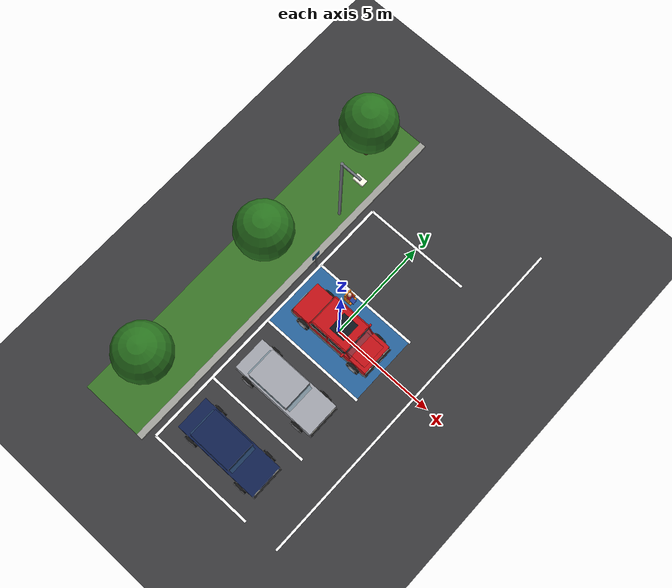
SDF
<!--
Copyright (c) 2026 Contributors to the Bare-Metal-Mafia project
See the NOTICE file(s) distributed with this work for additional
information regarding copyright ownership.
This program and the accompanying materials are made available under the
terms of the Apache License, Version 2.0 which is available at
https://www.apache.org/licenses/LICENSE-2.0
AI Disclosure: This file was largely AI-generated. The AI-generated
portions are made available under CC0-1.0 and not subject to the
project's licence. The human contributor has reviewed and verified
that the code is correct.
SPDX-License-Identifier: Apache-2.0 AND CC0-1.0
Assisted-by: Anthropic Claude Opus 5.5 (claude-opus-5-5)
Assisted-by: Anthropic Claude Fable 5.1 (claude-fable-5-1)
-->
<?xml version="1.0"?>

<sdf version="1.8">
  <world name="cabin">
    <physics name="1ms" type="ignored">
      <max_step_size>0.001</max_step_size>
      <real_time_factor>1.0</real_time_factor>
    </physics>

    <plugin filename="ignition-gazebo-physics-system"
            name="ignition::gazebo::systems::Physics"/>
    <!-- create / remove / set_pose services, used by run.sh seat -->
    <plugin filename="ignition-gazebo-user-commands-system"
            name="ignition::gazebo::systems::UserCommands"/>
    <!-- state for the optional GUI client -->
    <plugin filename="ignition-gazebo-scene-broadcaster-system"
            name="ignition::gazebo::systems::SceneBroadcaster"/>
    <!-- publishes contact sensors; physics based, no rendering needed -->
    <plugin filename="ignition-gazebo-contact-system"
            name="ignition::gazebo::systems::Contact"/>

    <scene>
      <ambient>0.45 0.45 0.45 1</ambient>
      <background>0.62 0.76 0.9 1</background>
      <shadows>true</shadows>
      <grid>false</grid>
    </scene>

    <light type="directional" name="sun">
      <cast_shadows>true</cast_shadows>
      <pose>0 0 10 0 0 0</pose>
      <diffuse>0.9 0.88 0.82 1</diffuse>
      <specular>0.3 0.3 0.3 1</specular>
      <direction>-0.4 0.3 -0.85</direction>
    </light>

    <model name="ground_plane">
      <static>true</static>
      <link name="link">
        <collision name="collision">
          <geometry><plane><normal>0 0 1</normal><size>60 60</size></plane></geometry>
        </collision>
        <visual name="visual">
          <geometry><plane><normal>0 0 1</normal><size>60 60</size></plane></geometry>
          <material><ambient>0.16 0.16 0.17 1</ambient><diffuse>0.22 0.22 0.23 1</diffuse><specular>0.05 0.05 0.05 1</specular></material>
        </visual>
      </link>
    </model>

    <model name="parking_lot">
      <static>true</static>
      <link name="link">
        <visual name="bay_line_0">
          <pose>0 -8.5 0.004 0 0 0</pose>
          <geometry><box><size>5.2 0.12 0.008</size></box></geometry>
          <material><ambient>0.85 0.85 0.85 1</ambient><diffuse>0.95 0.95 0.95 1</diffuse><specular>0.1 0.1 0.1 1</specular></material>
        </visual>
        <visual name="bay_line_1">
          <pose>0 -5.1 0.004 0 0 0</pose>
          <geometry><box><size>5.2 0.12 0.008</size></box></geometry>
          <material><ambient>0.85 0.85 0.85 1</ambient><diffuse>0.95 0.95 0.95 1</diffuse><specular>0.1 0.1 0.1 1</specular></material>
        </visual>
        <visual name="bay_line_2">
          <pose>0 -1.7 0.004 0 0 0</pose>
          <geometry><box><size>5.2 0.12 0.008</size></box></geometry>
          <material><ambient>0.85 0.85 0.85 1</ambient><diffuse>0.95 0.95 0.95 1</diffuse><specular>0.1 0.1 0.1 1</specular></material>
        </visual>
        <visual name="bay_line_3">
          <pose>0 1.7 0.004 0 0 0</pose>
          <geometry><box><size>5.2 0.12 0.008</size></box></geometry>
          <material><ambient>0.85 0.85 0.85 1</ambient><diffuse>0.95 0.95 0.95 1</diffuse><specular>0.1 0.1 0.1 1</specular></material>
        </visual>
        <visual name="bay_line_4">
          <pose>0 5.1 0.004 0 0 0</pose>
          <geometry><box><size>5.2 0.12 0.008</size></box></geometry>
          <material><ambient>0.85 0.85 0.85 1</ambient><diffuse>0.95 0.95 0.95 1</diffuse><specular>0.1 0.1 0.1 1</specular></material>
        </visual>
        <visual name="bay_end_line">
          <pose>-2.6 -1.7 0.004 0 0 0</pose>
          <geometry><box><size>0.12 13.6 0.008</size></box></geometry>
          <material><ambient>0.85 0.85 0.85 1</ambient><diffuse>0.95 0.95 0.95 1</diffuse><specular>0.1 0.1 0.1 1</specular></material>
        </visual>
        <visual name="bay_family">
          <pose>0 0 0.002 0 0 0</pose>
          <geometry><box><size>5.1 3.28 0.004</size></box></geometry>
          <material><ambient>0.12 0.3 0.45 1</ambient><diffuse>0.15 0.38 0.6 1</diffuse><specular>0.05 0.05 0.05 1</specular></material>
        </visual>
        <visual name="family_sign_post">
          <pose>-2.75 1.55 0.6 0 0 0</pose>
          <geometry><cylinder><radius>0.03</radius><length>1.2</length></cylinder></geometry>
          <material><ambient>0.3 0.32 0.34 1</ambient><diffuse>0.42 0.44 0.46 1</diffuse><specular>0.4 0.4 0.4 1</specular></material>
        </visual>
        <visual name="family_sign">
          <pose>-2.75 1.55 1.3 0 0 0</pose>
          <geometry><box><size>0.02 0.4 0.4</size></box></geometry>
          <material><ambient>0.12 0.3 0.45 1</ambient><diffuse>0.15 0.38 0.6 1</diffuse><specular>0.05 0.05 0.05 1</specular></material>
        </visual>
        <visual name="aisle_line">
          <pose>4.3 0 0.004 0 0 0</pose>
          <geometry><box><size>0.1 17 0.008</size></box></geometry>
          <material><ambient>0.85 0.85 0.85 1</ambient><diffuse>0.95 0.95 0.95 1</diffuse><specular>0.1 0.1 0.1 1</specular></material>
        </visual>
        <visual name="curb">
          <pose>-3.05 0 0.075 0 0 0</pose>
          <geometry><box><size>0.3 18 0.15</size></box></geometry>
          <material><ambient>0.5 0.5 0.48 1</ambient><diffuse>0.62 0.62 0.6 1</diffuse><specular>0.05 0.05 0.05 1</specular></material>
        </visual>
        <visual name="green_strip">
          <pose>-4.7 0 0.05 0 0 0</pose>
          <geometry><box><size>3.0 18 0.1</size></box></geometry>
          <material><ambient>0.15 0.32 0.1 1</ambient><diffuse>0.22 0.45 0.15 1</diffuse><specular>0.02 0.02 0.02 1</specular></material>
        </visual>
        <visual name="tree_0_trunk">
          <pose>-4.7 -6.5 1.2 0 0 0</pose>
          <geometry><cylinder><radius>0.14</radius><length>2.4</length></cylinder></geometry>
          <material><ambient>0.25 0.16 0.08 1</ambient><diffuse>0.35 0.23 0.12 1</diffuse><specular>0.02 0.02 0.02 1</specular></material>
        </visual>
        <visual name="tree_0_crown">
          <pose>-4.7 -6.5 3.0 0 0 0</pose>
          <geometry><sphere><radius>1.3</radius></sphere></geometry>
          <material><ambient>0.1 0.3 0.08 1</ambient><diffuse>0.16 0.45 0.12 1</diffuse><specular>0.02 0.02 0.02 1</specular></material>
        </visual>
        <visual name="tree_1_trunk">
          <pose>-4.7 0.5 1.2 0 0 0</pose>
          <geometry><cylinder><radius>0.14</radius><length>2.4</length></cylinder></geometry>
          <material><ambient>0.25 0.16 0.08 1</ambient><diffuse>0.35 0.23 0.12 1</diffuse><specular>0.02 0.02 0.02 1</specular></material>
        </visual>
        <visual name="tree_1_crown">
          <pose>-4.7 0.5 3.0 0 0 0</pose>
          <geometry><sphere><radius>1.3</radius></sphere></geometry>
          <material><ambient>0.1 0.3 0.08 1</ambient><diffuse>0.16 0.45 0.12 1</diffuse><specular>0.02 0.02 0.02 1</specular></material>
        </visual>
        <visual name="tree_2_trunk">
          <pose>-4.7 7.0 1.2 0 0 0</pose>
          <geometry><cylinder><radius>0.14</radius><length>2.4</length></cylinder></geometry>
          <material><ambient>0.25 0.16 0.08 1</ambient><diffuse>0.35 0.23 0.12 1</diffuse><specular>0.02 0.02 0.02 1</specular></material>
        </visual>
        <visual name="tree_2_crown">
          <pose>-4.7 7.0 3.0 0 0 0</pose>
          <geometry><sphere><radius>1.3</radius></sphere></geometry>
          <material><ambient>0.1 0.3 0.08 1</ambient><diffuse>0.16 0.45 0.12 1</diffuse><specular>0.02 0.02 0.02 1</specular></material>
        </visual>
        <visual name="lamp_pole">
          <pose>-3.6 4.0 2.75 0 0 0</pose>
          <geometry><cylinder><radius>0.07</radius><length>5.5</length></cylinder></geometry>
          <material><ambient>0.3 0.32 0.34 1</ambient><diffuse>0.42 0.44 0.46 1</diffuse><specular>0.4 0.4 0.4 1</specular></material>
        </visual>
        <visual name="lamp_arm">
          <pose>-3.1 4.0 5.45 0 0 0</pose>
          <geometry><box><size>1.0 0.1 0.08</size></box></geometry>
          <material><ambient>0.3 0.32 0.34 1</ambient><diffuse>0.42 0.44 0.46 1</diffuse><specular>0.4 0.4 0.4 1</specular></material>
        </visual>
        <visual name="lamp_head">
          <pose>-2.65 4.0 5.38 0 0 0</pose>
          <geometry><box><size>0.5 0.3 0.1</size></box></geometry>
          <material><ambient>0.9 0.9 0.8 1</ambient><diffuse>1 1 0.9 1</diffuse><emissive>0.8 0.8 0.65 1</emissive></material>
        </visual>
      </link>
    </model>

    <model name="parked_car_1">
      <static>true</static>
      <pose>0 -3.4 0 0 0 0</pose>
      <link name="link">
        <visual name="body">
          <pose>0.1 0 0.62 0 0 0</pose>
          <geometry><box><size>4.2 1.62 0.55</size></box></geometry>
          <material><ambient>0.45 0.46 0.48 1</ambient><diffuse>0.62 0.63 0.66 1</diffuse><specular>0.9 0.9 0.9 1</specular></material>
        </visual>
        <visual name="cabin">
          <pose>-0.25 0 1.1 0 0 0</pose>
          <geometry><box><size>2.1 1.45 0.45</size></box></geometry>
          <material><ambient>0.45 0.46 0.48 1</ambient><diffuse>0.62 0.63 0.66 1</diffuse><specular>0.9 0.9 0.9 1</specular></material>
        </visual>
        <visual name="glass_left">
          <pose>-0.25 0.727 1.1 0 0 0</pose>
          <geometry><box><size>1.9 0.01 0.35</size></box></geometry>
          <material><ambient>0.25 0.45 0.55 0.35</ambient><diffuse>0.35 0.6 0.7 0.35</diffuse><specular>0.9 0.9 0.9 1</specular></material>
          <transparency>0.55</transparency>
        </visual>
        <visual name="glass_right">
          <pose>-0.25 -0.727 1.1 0 0 0</pose>
          <geometry><box><size>1.9 0.01 0.35</size></box></geometry>
          <material><ambient>0.25 0.45 0.55 0.35</ambient><diffuse>0.35 0.6 0.7 0.35</diffuse><specular>0.9 0.9 0.9 1</specular></material>
          <transparency>0.55</transparency>
        </visual>
        <visual name="windshield">
          <pose>0.81 0 1.1 0 -0.6 0</pose>
          <geometry><box><size>0.02 1.35 0.5</size></box></geometry>
          <material><ambient>0.25 0.45 0.55 0.35</ambient><diffuse>0.35 0.6 0.7 0.35</diffuse><specular>0.9 0.9 0.9 1</specular></material>
          <transparency>0.55</transparency>
        </visual>
        <visual name="rear_window">
          <pose>-1.31 0 1.1 0 0.6 0</pose>
          <geometry><box><size>0.02 1.35 0.45</size></box></geometry>
          <material><ambient>0.25 0.45 0.55 0.35</ambient><diffuse>0.35 0.6 0.7 0.35</diffuse><specular>0.9 0.9 0.9 1</specular></material>
          <transparency>0.55</transparency>
        </visual>
        <visual name="bumper_front">
          <pose>2.2 0 0.42 0 0 0</pose>
          <geometry><box><size>0.12 1.62 0.2</size></box></geometry>
          <material><ambient>0.03 0.03 0.03 1</ambient><diffuse>0.06 0.06 0.06 1</diffuse><specular>0.2 0.2 0.2 1</specular></material>
        </visual>
        <visual name="bumper_rear">
          <pose>-2.0 0 0.42 0 0 0</pose>
          <geometry><box><size>0.12 1.62 0.2</size></box></geometry>
          <material><ambient>0.03 0.03 0.03 1</ambient><diffuse>0.06 0.06 0.06 1</diffuse><specular>0.2 0.2 0.2 1</specular></material>
        </visual>
        <visual name="headlight_left">
          <pose>2.205 0.55 0.68 0 0 0</pose>
          <geometry><box><size>0.02 0.3 0.1</size></box></geometry>
          <material><ambient>0.9 0.9 0.8 1</ambient><diffuse>1 1 0.9 1</diffuse><emissive>0.9 0.9 0.75 1</emissive></material>
        </visual>
        <visual name="headlight_right">
          <pose>2.205 -0.55 0.68 0 0 0</pose>
          <geometry><box><size>0.02 0.3 0.1</size></box></geometry>
          <material><ambient>0.9 0.9 0.8 1</ambient><diffuse>1 1 0.9 1</diffuse><emissive>0.9 0.9 0.75 1</emissive></material>
        </visual>
        <visual name="wheel_front_left">
          <pose>1.5 0.82 0.33 1.5708 0 0</pose>
          <geometry><cylinder><radius>0.33</radius><length>0.24</length></cylinder></geometry>
          <material><ambient>0.04 0.04 0.04 1</ambient><diffuse>0.08 0.08 0.08 1</diffuse><specular>0.05 0.05 0.05 1</specular></material>
        </visual>
        <visual name="hub_front_left">
          <pose>1.5 0.82 0.33 1.5708 0 0</pose>
          <geometry><cylinder><radius>0.19</radius><length>0.26</length></cylinder></geometry>
          <material><ambient>0.6 0.6 0.62 1</ambient><diffuse>0.75 0.75 0.78 1</diffuse><specular>1 1 1 1</specular></material>
        </visual>
        <visual name="wheel_front_right">
          <pose>1.5 -0.82 0.33 1.5708 0 0</pose>
          <geometry><cylinder><radius>0.33</radius><length>0.24</length></cylinder></geometry>
          <material><ambient>0.04 0.04 0.04 1</ambient><diffuse>0.08 0.08 0.08 1</diffuse><specular>0.05 0.05 0.05 1</specular></material>
        </visual>
        <visual name="hub_front_right">
          <pose>1.5 -0.82 0.33 1.5708 0 0</pose>
          <geometry><cylinder><radius>0.19</radius><length>0.26</length></cylinder></geometry>
          <material><ambient>0.6 0.6 0.62 1</ambient><diffuse>0.75 0.75 0.78 1</diffuse><specular>1 1 1 1</specular></material>
        </visual>
        <visual name="wheel_rear_left">
          <pose>-1.3 0.82 0.33 1.5708 0 0</pose>
          <geometry><cylinder><radius>0.33</radius><length>0.24</length></cylinder></geometry>
          <material><ambient>0.04 0.04 0.04 1</ambient><diffuse>0.08 0.08 0.08 1</diffuse><specular>0.05 0.05 0.05 1</specular></material>
        </visual>
        <visual name="hub_rear_left">
          <pose>-1.3 0.82 0.33 1.5708 0 0</pose>
          <geometry><cylinder><radius>0.19</radius><length>0.26</length></cylinder></geometry>
          <material><ambient>0.6 0.6 0.62 1</ambient><diffuse>0.75 0.75 0.78 1</diffuse><specular>1 1 1 1</specular></material>
        </visual>
        <visual name="wheel_rear_right">
          <pose>-1.3 -0.82 0.33 1.5708 0 0</pose>
          <geometry><cylinder><radius>0.33</radius><length>0.24</length></cylinder></geometry>
          <material><ambient>0.04 0.04 0.04 1</ambient><diffuse>0.08 0.08 0.08 1</diffuse><specular>0.05 0.05 0.05 1</specular></material>
        </visual>
        <visual name="hub_rear_right">
          <pose>-1.3 -0.82 0.33 1.5708 0 0</pose>
          <geometry><cylinder><radius>0.19</radius><length>0.26</length></cylinder></geometry>
          <material><ambient>0.6 0.6 0.62 1</ambient><diffuse>0.75 0.75 0.78 1</diffuse><specular>1 1 1 1</specular></material>
        </visual>
      </link>
    </model>

    <model name="parked_car_2">
      <static>true</static>
      <pose>0 -6.8 0 0 0 0</pose>
      <link name="link">
        <visual name="body">
          <pose>0.1 0 0.62 0 0 0</pose>
          <geometry><box><size>4.2 1.62 0.55</size></box></geometry>
          <material><ambient>0.04 0.08 0.2 1</ambient><diffuse>0.06 0.12 0.3 1</diffuse><specular>0.8 0.8 0.8 1</specular></material>
        </visual>
        <visual name="cabin">
          <pose>-0.25 0 1.1 0 0 0</pose>
          <geometry><box><size>2.1 1.45 0.45</size></box></geometry>
          <material><ambient>0.04 0.08 0.2 1</ambient><diffuse>0.06 0.12 0.3 1</diffuse><specular>0.8 0.8 0.8 1</specular></material>
        </visual>
        <visual name="glass_left">
          <pose>-0.25 0.727 1.1 0 0 0</pose>
          <geometry><box><size>1.9 0.01 0.35</size></box></geometry>
          <material><ambient>0.25 0.45 0.55 0.35</ambient><diffuse>0.35 0.6 0.7 0.35</diffuse><specular>0.9 0.9 0.9 1</specular></material>
          <transparency>0.55</transparency>
        </visual>
        <visual name="glass_right">
          <pose>-0.25 -0.727 1.1 0 0 0</pose>
          <geometry><box><size>1.9 0.01 0.35</size></box></geometry>
          <material><ambient>0.25 0.45 0.55 0.35</ambient><diffuse>0.35 0.6 0.7 0.35</diffuse><specular>0.9 0.9 0.9 1</specular></material>
          <transparency>0.55</transparency>
        </visual>
        <visual name="windshield">
          <pose>0.81 0 1.1 0 -0.6 0</pose>
          <geometry><box><size>0.02 1.35 0.5</size></box></geometry>
          <material><ambient>0.25 0.45 0.55 0.35</ambient><diffuse>0.35 0.6 0.7 0.35</diffuse><specular>0.9 0.9 0.9 1</specular></material>
          <transparency>0.55</transparency>
        </visual>
        <visual name="rear_window">
          <pose>-1.31 0 1.1 0 0.6 0</pose>
          <geometry><box><size>0.02 1.35 0.45</size></box></geometry>
          <material><ambient>0.25 0.45 0.55 0.35</ambient><diffuse>0.35 0.6 0.7 0.35</diffuse><specular>0.9 0.9 0.9 1</specular></material>
          <transparency>0.55</transparency>
        </visual>
        <visual name="bumper_front">
          <pose>2.2 0 0.42 0 0 0</pose>
          <geometry><box><size>0.12 1.62 0.2</size></box></geometry>
          <material><ambient>0.03 0.03 0.03 1</ambient><diffuse>0.06 0.06 0.06 1</diffuse><specular>0.2 0.2 0.2 1</specular></material>
        </visual>
        <visual name="bumper_rear">
          <pose>-2.0 0 0.42 0 0 0</pose>
          <geometry><box><size>0.12 1.62 0.2</size></box></geometry>
          <material><ambient>0.03 0.03 0.03 1</ambient><diffuse>0.06 0.06 0.06 1</diffuse><specular>0.2 0.2 0.2 1</specular></material>
        </visual>
        <visual name="headlight_left">
          <pose>2.205 0.55 0.68 0 0 0</pose>
          <geometry><box><size>0.02 0.3 0.1</size></box></geometry>
          <material><ambient>0.9 0.9 0.8 1</ambient><diffuse>1 1 0.9 1</diffuse><emissive>0.9 0.9 0.75 1</emissive></material>
        </visual>
        <visual name="headlight_right">
          <pose>2.205 -0.55 0.68 0 0 0</pose>
          <geometry><box><size>0.02 0.3 0.1</size></box></geometry>
          <material><ambient>0.9 0.9 0.8 1</ambient><diffuse>1 1 0.9 1</diffuse><emissive>0.9 0.9 0.75 1</emissive></material>
        </visual>
        <visual name="wheel_front_left">
          <pose>1.5 0.82 0.33 1.5708 0 0</pose>
          <geometry><cylinder><radius>0.33</radius><length>0.24</length></cylinder></geometry>
          <material><ambient>0.04 0.04 0.04 1</ambient><diffuse>0.08 0.08 0.08 1</diffuse><specular>0.05 0.05 0.05 1</specular></material>
        </visual>
        <visual name="hub_front_left">
          <pose>1.5 0.82 0.33 1.5708 0 0</pose>
          <geometry><cylinder><radius>0.19</radius><length>0.26</length></cylinder></geometry>
          <material><ambient>0.6 0.6 0.62 1</ambient><diffuse>0.75 0.75 0.78 1</diffuse><specular>1 1 1 1</specular></material>
        </visual>
        <visual name="wheel_front_right">
          <pose>1.5 -0.82 0.33 1.5708 0 0</pose>
          <geometry><cylinder><radius>0.33</radius><length>0.24</length></cylinder></geometry>
          <material><ambient>0.04 0.04 0.04 1</ambient><diffuse>0.08 0.08 0.08 1</diffuse><specular>0.05 0.05 0.05 1</specular></material>
        </visual>
        <visual name="hub_front_right">
          <pose>1.5 -0.82 0.33 1.5708 0 0</pose>
          <geometry><cylinder><radius>0.19</radius><length>0.26</length></cylinder></geometry>
          <material><ambient>0.6 0.6 0.62 1</ambient><diffuse>0.75 0.75 0.78 1</diffuse><specular>1 1 1 1</specular></material>
        </visual>
        <visual name="wheel_rear_left">
          <pose>-1.3 0.82 0.33 1.5708 0 0</pose>
          <geometry><cylinder><radius>0.33</radius><length>0.24</length></cylinder></geometry>
          <material><ambient>0.04 0.04 0.04 1</ambient><diffuse>0.08 0.08 0.08 1</diffuse><specular>0.05 0.05 0.05 1</specular></material>
        </visual>
        <visual name="hub_rear_left">
          <pose>-1.3 0.82 0.33 1.5708 0 0</pose>
          <geometry><cylinder><radius>0.19</radius><length>0.26</length></cylinder></geometry>
          <material><ambient>0.6 0.6 0.62 1</ambient><diffuse>0.75 0.75 0.78 1</diffuse><specular>1 1 1 1</specular></material>
        </visual>
        <visual name="wheel_rear_right">
          <pose>-1.3 -0.82 0.33 1.5708 0 0</pose>
          <geometry><cylinder><radius>0.33</radius><length>0.24</length></cylinder></geometry>
          <material><ambient>0.04 0.04 0.04 1</ambient><diffuse>0.08 0.08 0.08 1</diffuse><specular>0.05 0.05 0.05 1</specular></material>
        </visual>
        <visual name="hub_rear_right">
          <pose>-1.3 -0.82 0.33 1.5708 0 0</pose>
          <geometry><cylinder><radius>0.19</radius><length>0.26</length></cylinder></geometry>
          <material><ambient>0.6 0.6 0.62 1</ambient><diffuse>0.75 0.75 0.78 1</diffuse><specular>1 1 1 1</specular></material>
        </visual>
      </link>
    </model>

    <!--
      Our car. Frame: x forward, y left, z up, origin on the ground at the
      cabin centre. Interior floor top z 0.375. Roof is visual only.
    -->
    <model name="cabin">
      <joint name="cabin_to_world" type="fixed">
        <parent>world</parent>
        <child>body</child>
      </joint>

      <link name="body">
        <inertial>
          <mass>200</mass>
          <inertia>
            <ixx>50</ixx><iyy>80</iyy><izz>100</izz>
            <ixy>0</ixy><ixz>0</ixz><iyz>0</iyz>
          </inertia>
        </inertial>

        <collision name="floor_collision">
          <pose>0 0 0.35 0 0 0</pose>
          <geometry><box><size>2.0 1.5 0.05</size></box></geometry>
        </collision>
        <visual name="floor_visual">
          <pose>0 0 0.35 0 0 0</pose>
          <geometry><box><size>2.0 1.5 0.05</size></box></geometry>
          <material><ambient>0.12 0.12 0.13 1</ambient><diffuse>0.18 0.18 0.2 1</diffuse><specular>0.3 0.3 0.3 1</specular></material>
        </visual>
        <visual name="sill_left_visual">
          <pose>0.05 0.775 0.29 0 0 0</pose>
          <geometry><box><size>4.1 0.05 0.17</size></box></geometry>
          <material><ambient>0.03 0.03 0.03 1</ambient><diffuse>0.06 0.06 0.06 1</diffuse><specular>0.2 0.2 0.2 1</specular></material>
        </visual>
        <visual name="sill_right_visual">
          <pose>0.05 -0.775 0.29 0 0 0</pose>
          <geometry><box><size>4.1 0.05 0.17</size></box></geometry>
          <material><ambient>0.03 0.03 0.03 1</ambient><diffuse>0.06 0.06 0.06 1</diffuse><specular>0.2 0.2 0.2 1</specular></material>
        </visual>
        <collision name="door_front_left_collision">
          <pose>0.5 0.75 0.625 0 0 0</pose>
          <geometry><box><size>1.0 0.05 0.5</size></box></geometry>
        </collision>
        <visual name="door_front_left_visual">
          <pose>0.5 0.75 0.625 0 0 0</pose>
          <geometry><box><size>1.0 0.05 0.5</size></box></geometry>
          <material><ambient>0.55 0.04 0.06 1</ambient><diffuse>0.75 0.06 0.08 1</diffuse><specular>0.9 0.9 0.9 1</specular></material>
        </visual>
        <collision name="door_rear_left_collision">
          <pose>-0.5 0.75 0.625 0 0 0</pose>
          <geometry><box><size>1.0 0.05 0.5</size></box></geometry>
        </collision>
        <visual name="door_rear_left_visual">
          <pose>-0.5 0.75 0.625 0 0 0</pose>
          <geometry><box><size>1.0 0.05 0.5</size></box></geometry>
          <material><ambient>0.55 0.04 0.06 1</ambient><diffuse>0.75 0.06 0.08 1</diffuse><specular>0.9 0.9 0.9 1</specular></material>
        </visual>
        <collision name="door_front_right_collision">
          <pose>0.5 -0.75 0.625 0 0 0</pose>
          <geometry><box><size>1.0 0.05 0.5</size></box></geometry>
        </collision>
        <visual name="door_front_right_visual">
          <pose>0.5 -0.75 0.625 0 0 0</pose>
          <geometry><box><size>1.0 0.05 0.5</size></box></geometry>
          <material><ambient>0.55 0.04 0.06 1</ambient><diffuse>0.75 0.06 0.08 1</diffuse><specular>0.9 0.9 0.9 1</specular></material>
        </visual>
        <collision name="door_rear_right_collision">
          <pose>-0.5 -0.75 0.625 0 0 0</pose>
          <geometry><box><size>1.0 0.05 0.5</size></box></geometry>
        </collision>
        <visual name="door_rear_right_visual">
          <pose>-0.5 -0.75 0.625 0 0 0</pose>
          <geometry><box><size>1.0 0.05 0.5</size></box></geometry>
          <material><ambient>0.55 0.04 0.06 1</ambient><diffuse>0.75 0.06 0.08 1</diffuse><specular>0.9 0.9 0.9 1</specular></material>
        </visual>
        <visual name="door_seam_left_visual">
          <pose>0.0 0.778 0.625 0 0 0</pose>
          <geometry><box><size>0.01 0.01 0.5</size></box></geometry>
          <material><ambient>0.03 0.03 0.03 1</ambient><diffuse>0.06 0.06 0.06 1</diffuse><specular>0.2 0.2 0.2 1</specular></material>
        </visual>
        <visual name="door_seam_right_visual">
          <pose>0.0 -0.778 0.625 0 0 0</pose>
          <geometry><box><size>0.01 0.01 0.5</size></box></geometry>
          <material><ambient>0.03 0.03 0.03 1</ambient><diffuse>0.06 0.06 0.06 1</diffuse><specular>0.2 0.2 0.2 1</specular></material>
        </visual>
        <visual name="handle_front_left_visual">
          <pose>0.25 0.779 0.8 0 0 0</pose>
          <geometry><box><size>0.14 0.012 0.03</size></box></geometry>
          <material><ambient>0.6 0.6 0.62 1</ambient><diffuse>0.75 0.75 0.78 1</diffuse><specular>1 1 1 1</specular></material>
        </visual>
        <visual name="handle_rear_left_visual">
          <pose>-0.75 0.779 0.8 0 0 0</pose>
          <geometry><box><size>0.14 0.012 0.03</size></box></geometry>
          <material><ambient>0.6 0.6 0.62 1</ambient><diffuse>0.75 0.75 0.78 1</diffuse><specular>1 1 1 1</specular></material>
        </visual>
        <visual name="handle_front_right_visual">
          <pose>0.25 -0.779 0.8 0 0 0</pose>
          <geometry><box><size>0.14 0.012 0.03</size></box></geometry>
          <material><ambient>0.6 0.6 0.62 1</ambient><diffuse>0.75 0.75 0.78 1</diffuse><specular>1 1 1 1</specular></material>
        </visual>
        <visual name="handle_rear_right_visual">
          <pose>-0.75 -0.779 0.8 0 0 0</pose>
          <geometry><box><size>0.14 0.012 0.03</size></box></geometry>
          <material><ambient>0.6 0.6 0.62 1</ambient><diffuse>0.75 0.75 0.78 1</diffuse><specular>1 1 1 1</specular></material>
        </visual>
        <visual name="belt_trim_left_visual">
          <pose>0.0 0.75 0.88 0 0 0</pose>
          <geometry><box><size>2.0 0.07 0.02</size></box></geometry>
          <material><ambient>0.03 0.03 0.03 1</ambient><diffuse>0.06 0.06 0.06 1</diffuse><specular>0.2 0.2 0.2 1</specular></material>
        </visual>
        <visual name="belt_trim_right_visual">
          <pose>0.0 -0.75 0.88 0 0 0</pose>
          <geometry><box><size>2.0 0.07 0.02</size></box></geometry>
          <material><ambient>0.03 0.03 0.03 1</ambient><diffuse>0.06 0.06 0.06 1</diffuse><specular>0.2 0.2 0.2 1</specular></material>
        </visual>
        <visual name="glass_front_left_visual">
          <pose>0.5 0.75 1.06 0 0 0</pose>
          <geometry><box><size>0.85 0.01 0.36</size></box></geometry>
          <material><ambient>0.01 0.01 0.01 1</ambient><diffuse>0.02 0.02 0.02 1</diffuse><specular>0.5 0.5 0.5 1</specular></material>
        </visual>
        <visual name="glass_front_right_visual">
          <pose>0.5 -0.75 1.06 0 0 0</pose>
          <geometry><box><size>0.85 0.01 0.36</size></box></geometry>
          <material><ambient>0.01 0.01 0.01 1</ambient><diffuse>0.02 0.02 0.02 1</diffuse><specular>0.5 0.5 0.5 1</specular></material>
        </visual>
        <visual name="glass_rear_right_visual">
          <pose>-0.5 -0.75 1.075 0 0 0</pose>
          <geometry><box><size>0.9 0.01 0.4</size></box></geometry>
          <material><ambient>0.01 0.01 0.01 1</ambient><diffuse>0.02 0.02 0.02 1</diffuse><specular>0.5 0.5 0.5 1</specular></material>
        </visual>
        <visual name="hood_visual">
          <pose>1.575 0 0.62 0 0 0</pose>
          <geometry><box><size>1.15 1.55 0.5</size></box></geometry>
          <material><ambient>0.55 0.04 0.06 1</ambient><diffuse>0.75 0.06 0.08 1</diffuse><specular>0.9 0.9 0.9 1</specular></material>
        </visual>
        <visual name="hood_bulge_visual">
          <pose>1.5 0 0.875 0 0.04 0</pose>
          <geometry><box><size>0.95 1.2 0.03</size></box></geometry>
          <material><ambient>0.55 0.04 0.06 1</ambient><diffuse>0.75 0.06 0.08 1</diffuse><specular>0.9 0.9 0.9 1</specular></material>
        </visual>
        <collision name="firewall_collision">
          <pose>0.975 0 0.6 0 0 0</pose>
          <geometry><box><size>0.05 1.5 0.5</size></box></geometry>
        </collision>
        <visual name="firewall_visual">
          <pose>0.975 0 0.6 0 0 0</pose>
          <geometry><box><size>0.05 1.5 0.5</size></box></geometry>
          <material><ambient>0.08 0.08 0.09 1</ambient><diffuse>0.14 0.14 0.15 1</diffuse><specular>0.2 0.2 0.2 1</specular></material>
        </visual>
        <visual name="dashboard_visual">
          <pose>0.85 0 0.92 0 0 0</pose>
          <geometry><box><size>0.3 1.45 0.14</size></box></geometry>
          <material><ambient>0.08 0.08 0.09 1</ambient><diffuse>0.14 0.14 0.15 1</diffuse><specular>0.2 0.2 0.2 1</specular></material>
        </visual>
        <visual name="windshield_visual">
          <pose>1.12 0 1.12 0 -0.5 0</pose>
          <geometry><box><size>0.02 1.42 0.6</size></box></geometry>
          <material><ambient>0.25 0.45 0.55 0.35</ambient><diffuse>0.35 0.6 0.7 0.35</diffuse><specular>0.9 0.9 0.9 1</specular></material>
          <transparency>0.55</transparency>
        </visual>
        <visual name="a_pillar_left_visual">
          <pose>1.12 0.72 1.12 0 -0.5 0</pose>
          <geometry><box><size>0.05 0.05 0.62</size></box></geometry>
          <material><ambient>0.55 0.04 0.06 1</ambient><diffuse>0.75 0.06 0.08 1</diffuse><specular>0.9 0.9 0.9 1</specular></material>
        </visual>
        <visual name="a_pillar_right_visual">
          <pose>1.12 -0.72 1.12 0 -0.5 0</pose>
          <geometry><box><size>0.05 0.05 0.62</size></box></geometry>
          <material><ambient>0.55 0.04 0.06 1</ambient><diffuse>0.75 0.06 0.08 1</diffuse><specular>0.9 0.9 0.9 1</specular></material>
        </visual>
        <visual name="windshield_header_visual">
          <pose>0.99 0 1.385 0 0 0</pose>
          <geometry><box><size>0.06 1.47 0.05</size></box></geometry>
          <material><ambient>0.55 0.04 0.06 1</ambient><diffuse>0.75 0.06 0.08 1</diffuse><specular>0.9 0.9 0.9 1</specular></material>
        </visual>
        <visual name="mirror_left_visual">
          <pose>0.95 0.86 0.98 0 0 0</pose>
          <geometry><box><size>0.08 0.18 0.11</size></box></geometry>
          <material><ambient>0.55 0.04 0.06 1</ambient><diffuse>0.75 0.06 0.08 1</diffuse><specular>0.9 0.9 0.9 1</specular></material>
        </visual>
        <visual name="mirror_right_visual">
          <pose>0.95 -0.86 0.98 0 0 0</pose>
          <geometry><box><size>0.08 0.18 0.11</size></box></geometry>
          <material><ambient>0.55 0.04 0.06 1</ambient><diffuse>0.75 0.06 0.08 1</diffuse><specular>0.9 0.9 0.9 1</specular></material>
        </visual>
        <visual name="bumper_front_visual">
          <pose>2.18 0 0.42 0 0 0</pose>
          <geometry><box><size>0.12 1.6 0.2</size></box></geometry>
          <material><ambient>0.03 0.03 0.03 1</ambient><diffuse>0.06 0.06 0.06 1</diffuse><specular>0.2 0.2 0.2 1</specular></material>
        </visual>
        <visual name="grille_visual">
          <pose>2.155 0 0.62 0 0 0</pose>
          <geometry><box><size>0.02 0.7 0.18</size></box></geometry>
          <material><ambient>0.03 0.03 0.03 1</ambient><diffuse>0.06 0.06 0.06 1</diffuse><specular>0.2 0.2 0.2 1</specular></material>
        </visual>
        <visual name="headlight_left_visual">
          <pose>2.155 0.55 0.66 0 0 0</pose>
          <geometry><box><size>0.03 0.32 0.12</size></box></geometry>
          <material><ambient>0.9 0.9 0.8 1</ambient><diffuse>1 1 0.9 1</diffuse><emissive>0.9 0.9 0.75 1</emissive></material>
        </visual>
        <visual name="headlight_right_visual">
          <pose>2.155 -0.55 0.66 0 0 0</pose>
          <geometry><box><size>0.03 0.32 0.12</size></box></geometry>
          <material><ambient>0.9 0.9 0.8 1</ambient><diffuse>1 1 0.9 1</diffuse><emissive>0.9 0.9 0.75 1</emissive></material>
        </visual>
        <visual name="plate_front_visual">
          <pose>2.245 0 0.42 0 0 0</pose>
          <geometry><box><size>0.01 0.52 0.12</size></box></geometry>
          <material><ambient>0.85 0.85 0.85 1</ambient><diffuse>0.95 0.95 0.95 1</diffuse><specular>0.3 0.3 0.3 1</specular></material>
        </visual>
        <visual name="trunk_visual">
          <pose>-1.475 0 0.635 0 0 0</pose>
          <geometry><box><size>0.95 1.55 0.53</size></box></geometry>
          <material><ambient>0.55 0.04 0.06 1</ambient><diffuse>0.75 0.06 0.08 1</diffuse><specular>0.9 0.9 0.9 1</specular></material>
        </visual>
        <collision name="rear_wall_collision">
          <pose>-1.0 0 0.64 0 0 0</pose>
          <geometry><box><size>0.05 1.5 0.53</size></box></geometry>
        </collision>
        <visual name="rear_wall_visual">
          <pose>-1.0 0 0.64 0 0 0</pose>
          <geometry><box><size>0.05 1.5 0.53</size></box></geometry>
          <material><ambient>0.55 0.04 0.06 1</ambient><diffuse>0.75 0.06 0.08 1</diffuse><specular>0.9 0.9 0.9 1</specular></material>
        </visual>
        <visual name="trunk_lid_seam_visual">
          <pose>-1.0 0 0.903 0 0 0</pose>
          <geometry><box><size>0.02 1.5 0.01</size></box></geometry>
          <material><ambient>0.03 0.03 0.03 1</ambient><diffuse>0.06 0.06 0.06 1</diffuse><specular>0.2 0.2 0.2 1</specular></material>
        </visual>
        <visual name="taillight_left_visual">
          <pose>-1.955 0.6 0.76 0 0 0</pose>
          <geometry><box><size>0.03 0.3 0.1</size></box></geometry>
          <material><ambient>0.6 0.02 0.02 1</ambient><diffuse>0.8 0.03 0.03 1</diffuse><emissive>0.7 0.02 0.02 1</emissive></material>
        </visual>
        <visual name="taillight_right_visual">
          <pose>-1.955 -0.6 0.76 0 0 0</pose>
          <geometry><box><size>0.03 0.3 0.1</size></box></geometry>
          <material><ambient>0.6 0.02 0.02 1</ambient><diffuse>0.8 0.03 0.03 1</diffuse><emissive>0.7 0.02 0.02 1</emissive></material>
        </visual>
        <visual name="bumper_rear_visual">
          <pose>-1.99 0 0.42 0 0 0</pose>
          <geometry><box><size>0.12 1.6 0.2</size></box></geometry>
          <material><ambient>0.03 0.03 0.03 1</ambient><diffuse>0.06 0.06 0.06 1</diffuse><specular>0.2 0.2 0.2 1</specular></material>
        </visual>
        <visual name="plate_rear_visual">
          <pose>-2.055 0 0.52 0 0 0</pose>
          <geometry><box><size>0.01 0.52 0.12</size></box></geometry>
          <material><ambient>0.85 0.85 0.85 1</ambient><diffuse>0.95 0.95 0.95 1</diffuse><specular>0.3 0.3 0.3 1</specular></material>
        </visual>
        <visual name="front_seat_left_base_visual">
          <pose>0.45 0.38 0.5 0 0 0</pose>
          <geometry><box><size>0.5 0.5 0.15</size></box></geometry>
          <material><ambient>0.18 0.14 0.12 1</ambient><diffuse>0.32 0.25 0.2 1</diffuse><specular>0.1 0.1 0.1 1</specular></material>
        </visual>
        <visual name="front_seat_left_back_visual">
          <pose>0.2 0.38 0.86 0 -0.15 0</pose>
          <geometry><box><size>0.1 0.5 0.6</size></box></geometry>
          <material><ambient>0.18 0.14 0.12 1</ambient><diffuse>0.32 0.25 0.2 1</diffuse><specular>0.1 0.1 0.1 1</specular></material>
        </visual>
        <visual name="front_seat_left_head_visual">
          <pose>0.15 0.38 1.24 0 -0.15 0</pose>
          <geometry><box><size>0.08 0.26 0.16</size></box></geometry>
          <material><ambient>0.18 0.14 0.12 1</ambient><diffuse>0.32 0.25 0.2 1</diffuse><specular>0.1 0.1 0.1 1</specular></material>
        </visual>
        <visual name="front_seat_right_base_visual">
          <pose>0.45 -0.38 0.5 0 0 0</pose>
          <geometry><box><size>0.5 0.5 0.15</size></box></geometry>
          <material><ambient>0.18 0.14 0.12 1</ambient><diffuse>0.32 0.25 0.2 1</diffuse><specular>0.1 0.1 0.1 1</specular></material>
        </visual>
        <visual name="front_seat_right_back_visual">
          <pose>0.2 -0.38 0.86 0 -0.15 0</pose>
          <geometry><box><size>0.1 0.5 0.6</size></box></geometry>
          <material><ambient>0.18 0.14 0.12 1</ambient><diffuse>0.32 0.25 0.2 1</diffuse><specular>0.1 0.1 0.1 1</specular></material>
        </visual>
        <visual name="front_seat_right_head_visual">
          <pose>0.15 -0.38 1.24 0 -0.15 0</pose>
          <geometry><box><size>0.08 0.26 0.16</size></box></geometry>
          <material><ambient>0.18 0.14 0.12 1</ambient><diffuse>0.32 0.25 0.2 1</diffuse><specular>0.1 0.1 0.1 1</specular></material>
        </visual>
        <visual name="steering_column_visual">
          <pose>0.83 0.38 0.92 0 -1.1 0</pose>
          <geometry><cylinder><radius>0.025</radius><length>0.2</length></cylinder></geometry>
          <material><ambient>0.08 0.08 0.09 1</ambient><diffuse>0.14 0.14 0.15 1</diffuse><specular>0.2 0.2 0.2 1</specular></material>
        </visual>
        <visual name="steering_wheel_visual">
          <pose>0.74 0.38 0.97 0 -1.1 0</pose>
          <geometry><cylinder><radius>0.18</radius><length>0.035</length></cylinder></geometry>
          <material><ambient>0.03 0.03 0.03 1</ambient><diffuse>0.06 0.06 0.06 1</diffuse><specular>0.2 0.2 0.2 1</specular></material>
        </visual>
        <visual name="wheel_front_left">
          <pose>1.55 0.8 0.33 1.5708 0 0</pose>
          <geometry><cylinder><radius>0.33</radius><length>0.24</length></cylinder></geometry>
          <material><ambient>0.04 0.04 0.04 1</ambient><diffuse>0.08 0.08 0.08 1</diffuse><specular>0.05 0.05 0.05 1</specular></material>
        </visual>
        <visual name="hub_front_left">
          <pose>1.55 0.8 0.33 1.5708 0 0</pose>
          <geometry><cylinder><radius>0.19</radius><length>0.26</length></cylinder></geometry>
          <material><ambient>0.6 0.6 0.62 1</ambient><diffuse>0.75 0.75 0.78 1</diffuse><specular>1 1 1 1</specular></material>
        </visual>
        <visual name="wheel_front_right">
          <pose>1.55 -0.8 0.33 1.5708 0 0</pose>
          <geometry><cylinder><radius>0.33</radius><length>0.24</length></cylinder></geometry>
          <material><ambient>0.04 0.04 0.04 1</ambient><diffuse>0.08 0.08 0.08 1</diffuse><specular>0.05 0.05 0.05 1</specular></material>
        </visual>
        <visual name="hub_front_right">
          <pose>1.55 -0.8 0.33 1.5708 0 0</pose>
          <geometry><cylinder><radius>0.19</radius><length>0.26</length></cylinder></geometry>
          <material><ambient>0.6 0.6 0.62 1</ambient><diffuse>0.75 0.75 0.78 1</diffuse><specular>1 1 1 1</specular></material>
        </visual>
        <visual name="wheel_rear_left">
          <pose>-1.3 0.8 0.33 1.5708 0 0</pose>
          <geometry><cylinder><radius>0.33</radius><length>0.24</length></cylinder></geometry>
          <material><ambient>0.04 0.04 0.04 1</ambient><diffuse>0.08 0.08 0.08 1</diffuse><specular>0.05 0.05 0.05 1</specular></material>
        </visual>
        <visual name="hub_rear_left">
          <pose>-1.3 0.8 0.33 1.5708 0 0</pose>
          <geometry><cylinder><radius>0.19</radius><length>0.26</length></cylinder></geometry>
          <material><ambient>0.6 0.6 0.62 1</ambient><diffuse>0.75 0.75 0.78 1</diffuse><specular>1 1 1 1</specular></material>
        </visual>
        <visual name="wheel_rear_right">
          <pose>-1.3 -0.8 0.33 1.5708 0 0</pose>
          <geometry><cylinder><radius>0.33</radius><length>0.24</length></cylinder></geometry>
          <material><ambient>0.04 0.04 0.04 1</ambient><diffuse>0.08 0.08 0.08 1</diffuse><specular>0.05 0.05 0.05 1</specular></material>
        </visual>
        <visual name="hub_rear_right">
          <pose>-1.3 -0.8 0.33 1.5708 0 0</pose>
          <geometry><cylinder><radius>0.19</radius><length>0.26</length></cylinder></geometry>
          <material><ambient>0.6 0.6 0.62 1</ambient><diffuse>0.75 0.75 0.78 1</diffuse><specular>1 1 1 1</specular></material>
        </visual>
        <!-- roof with sunroof, pillars and rear window (visual only, no collision) -->
        <visual name="b_pillar_left_visual">
          <pose>0.0 0.75 1.1475 0 0 0</pose>
          <geometry><box><size>0.07 0.05 0.545</size></box></geometry>
          <material><ambient>0.55 0.04 0.06 1</ambient><diffuse>0.75 0.06 0.08 1</diffuse><specular>0.9 0.9 0.9 1</specular></material>
        </visual>
        <visual name="b_pillar_right_visual">
          <pose>0.0 -0.75 1.1475 0 0 0</pose>
          <geometry><box><size>0.07 0.05 0.545</size></box></geometry>
          <material><ambient>0.55 0.04 0.06 1</ambient><diffuse>0.75 0.06 0.08 1</diffuse><specular>0.9 0.9 0.9 1</specular></material>
        </visual>
        <visual name="roof_rail_left_visual">
          <pose>0.065 0.735 1.425 0 0 0</pose>
          <geometry><box><size>1.9 0.06 0.05</size></box></geometry>
          <material><ambient>0.55 0.04 0.06 1</ambient><diffuse>0.75 0.06 0.08 1</diffuse><specular>0.9 0.9 0.9 1</specular></material>
        </visual>
        <visual name="roof_rail_right_visual">
          <pose>0.065 -0.735 1.425 0 0 0</pose>
          <geometry><box><size>1.9 0.06 0.05</size></box></geometry>
          <material><ambient>0.55 0.04 0.06 1</ambient><diffuse>0.75 0.06 0.08 1</diffuse><specular>0.9 0.9 0.9 1</specular></material>
        </visual>
        <visual name="roof_bow_middle_visual">
          <pose>0.0 0 1.43 0 0 0</pose>
          <geometry><box><size>0.06 1.47 0.04</size></box></geometry>
          <material><ambient>0.55 0.04 0.06 1</ambient><diffuse>0.75 0.06 0.08 1</diffuse><specular>0.9 0.9 0.9 1</specular></material>
        </visual>
        <visual name="roof_header_rear_visual">
          <pose>-0.86 0 1.425 0 0 0</pose>
          <geometry><box><size>0.06 1.5 0.05</size></box></geometry>
          <material><ambient>0.55 0.04 0.06 1</ambient><diffuse>0.75 0.06 0.08 1</diffuse><specular>0.9 0.9 0.9 1</specular></material>
        </visual>
        <visual name="roof_panel_visual">
          <pose>0.065 0 1.44 0 0 0</pose>
          <geometry><box><size>1.85 1.42 0.03</size></box></geometry>
          <material><ambient>0.55 0.04 0.06 1</ambient><diffuse>0.75 0.06 0.08 1</diffuse><specular>0.9 0.9 0.9 1</specular></material>
        </visual>
        <visual name="sunroof_visual">
          <pose>0.25 0 1.458 0 0 0</pose>
          <geometry><box><size>0.8 0.9 0.01</size></box></geometry>
          <material><ambient>0.03 0.05 0.07 1</ambient><diffuse>0.05 0.08 0.11 1</diffuse><specular>1 1 1 1</specular></material>
        </visual>
        <visual name="rear_window_visual">
          <pose>-0.93 0 1.16 0 0.27 0</pose>
          <geometry><box><size>0.02 1.4 0.55</size></box></geometry>
          <material><ambient>0.01 0.01 0.01 1</ambient><diffuse>0.02 0.02 0.02 1</diffuse><specular>0.5 0.5 0.5 1</specular></material>
        </visual>
        <visual name="c_pillar_left_visual">
          <pose>-0.93 0.73 1.16 0 0.27 0</pose>
          <geometry><box><size>0.08 0.06 0.56</size></box></geometry>
          <material><ambient>0.55 0.04 0.06 1</ambient><diffuse>0.75 0.06 0.08 1</diffuse><specular>0.9 0.9 0.9 1</specular></material>
        </visual>
        <visual name="c_pillar_right_visual">
          <pose>-0.93 -0.73 1.16 0 0.27 0</pose>
          <geometry><box><size>0.08 0.06 0.56</size></box></geometry>
          <material><ambient>0.55 0.04 0.06 1</ambient><diffuse>0.75 0.06 0.08 1</diffuse><specular>0.9 0.9 0.9 1</specular></material>
        </visual>
      </link>

      <!-- Rear seat, row 2. Cushion top at z = 0.625. -->
      <link name="seat_row2">
        <inertial>
          <pose>-0.65 0 0.6 0 0 0</pose>
          <mass>20</mass>
          <inertia>
            <ixx>3</ixx><iyy>1</iyy><izz>3</izz>
            <ixy>0</ixy><ixz>0</ixz><iyz>0</iyz>
          </inertia>
        </inertial>

        <collision name="seat_row2_base_collision">
          <pose>-0.6 0 0.45 0 0 0</pose>
          <geometry><box><size>0.5 1.3 0.15</size></box></geometry>
        </collision>
        <visual name="seat_row2_base_visual">
          <pose>-0.6 0 0.45 0 0 0</pose>
          <geometry><box><size>0.5 1.3 0.15</size></box></geometry>
          <material><ambient>0.15 0.15 0.15 1</ambient><diffuse>0.15 0.15 0.15 1</diffuse></material>
        </visual>

        <collision name="seat_row2_cushion_collision">
          <pose>-0.6 0 0.575 0 0 0</pose>
          <geometry><box><size>0.5 1.3 0.1</size></box></geometry>
        </collision>
        <visual name="seat_row2_cushion_visual">
          <pose>-0.6 0 0.575 0 0 0</pose>
          <geometry><box><size>0.5 1.3 0.1</size></box></geometry>
          <material><ambient>0.35 0.3 0.25 1</ambient><diffuse>0.35 0.3 0.25 1</diffuse></material>
        </visual>

        <collision name="seat_row2_backrest_collision">
          <pose>-0.9 0 0.925 0 0 0</pose>
          <geometry><box><size>0.1 1.3 0.6</size></box></geometry>
        </collision>
        <visual name="seat_row2_backrest_visual">
          <pose>-0.9 0 0.925 0 0 0</pose>
          <geometry><box><size>0.1 1.3 0.6</size></box></geometry>
          <material><ambient>0.35 0.3 0.25 1</ambient><diffuse>0.35 0.3 0.25 1</diffuse></material>
        </visual>

        <sensor name="seat_row2_contact" type="contact">
          <always_on>true</always_on>
          <topic>/model/cabin/seat/row2/contact</topic>
          <contact>
            <collision>seat_row2_cushion_collision</collision>
            <topic>/model/cabin/seat/row2/contact</topic>
          </contact>
        </sensor>
      </link>

      <joint name="seat_row2_mount" type="fixed">
        <parent>body</parent>
        <child>seat_row2</child>
      </joint>

      <link name="window_row2_left">
        <pose>-0.5 0.75 1.075 0 0 0</pose>
        <gravity>false</gravity>
        <inertial>
          <mass>1.0</mass>
          <inertia>
            <!-- solid box 0.9 x 0.01 x 0.4 m, m = 1 kg -->
            <ixx>0.013342</ixx><iyy>0.080833</iyy><izz>0.067508</izz>
            <ixy>0</ixy><ixz>0</ixz><iyz>0</iyz>
          </inertia>
        </inertial>
        <visual name="glass_visual">
          <geometry><box><size>0.9 0.01 0.4</size></box></geometry>
          <material><ambient>0.01 0.01 0.01 1</ambient><diffuse>0.02 0.02 0.02 1</diffuse><specular>0.5 0.5 0.5 1</specular></material>
        </visual>
      </link>

      <!--
        Damping and cmd_max (max motor force) limit the glass to roughly
        window-motor speed, ~0.15 m/s, so a full stroke takes a few seconds
        instead of snapping into place.
      -->
      <joint name="window_row2_left_joint" type="prismatic">
        <parent>body</parent>
        <child>window_row2_left</child>
        <axis>
          <xyz>0 0 -1</xyz>
          <limit>
            <lower>0</lower>
            <upper>@WINDOW_TRAVEL_M@</upper>
          </limit>
          <dynamics>
            <damping>40.0</damping>
          </dynamics>
        </axis>
      </joint>

      <plugin filename="ignition-gazebo-joint-position-controller-system"
              name="ignition::gazebo::systems::JointPositionController">
        <joint_name>window_row2_left_joint</joint_name>
        <topic>/model/cabin/joint/window_row2_left_joint/cmd_pos</topic>
        <p_gain>200</p_gain>
        <i_gain>0</i_gain>
        <d_gain>30</d_gain>
        <cmd_max>6</cmd_max>
        <cmd_min>-6</cmd_min>
      </plugin>

      <plugin filename="ignition-gazebo-joint-state-publisher-system"
              name="ignition::gazebo::systems::JointStatePublisher">
        <topic>/model/cabin/joint_state</topic>
        <joint_name>window_row2_left_joint</joint_name>
      </plugin>
    </model>

    <model name="child_seat">
      <pose>-0.6 1.4 0.01 0 0 0</pose>
      <link name="link">
        <inertial>
          <pose>-0.05 0 0.25 0 0 0</pose>
          <mass>15.0</mass>
          <inertia>
            <ixx>0.65</ixx><iyy>0.65</iyy><izz>0.4</izz>
            <ixy>0</ixy><ixz>0</ixz><iyz>0</iyz>
          </inertia>
        </inertial>

        <!-- child seat shell -->
        <collision name="base_collision">
          <pose>0 0 0.04 0 0 0</pose>
          <geometry><box><size>0.4 0.4 0.08</size></box></geometry>
        </collision>
        <visual name="base_visual">
          <pose>0 0 0.04 0 0 0</pose>
          <geometry><box><size>0.4 0.4 0.08</size></box></geometry>
          <material><ambient>0.9 0.5 0.1 1</ambient><diffuse>0.9 0.5 0.1 1</diffuse></material>
        </visual>
        <collision name="backrest_collision">
          <pose>-0.17 0 0.355 0 0 0</pose>
          <geometry><box><size>0.06 0.4 0.55</size></box></geometry>
        </collision>
        <visual name="backrest_visual">
          <pose>-0.17 0 0.355 0 0 0</pose>
          <geometry><box><size>0.06 0.4 0.55</size></box></geometry>
          <material><ambient>0.9 0.5 0.1 1</ambient><diffuse>0.9 0.5 0.1 1</diffuse></material>
        </visual>
        <visual name="side_left_visual">
          <pose>-0.03 0.18 0.22 0 0 0</pose>
          <geometry><box><size>0.26 0.04 0.28</size></box></geometry>
          <material><ambient>0.9 0.5 0.1 1</ambient><diffuse>0.9 0.5 0.1 1</diffuse></material>
        </visual>
        <visual name="side_right_visual">
          <pose>-0.03 -0.18 0.22 0 0 0</pose>
          <geometry><box><size>0.26 0.04 0.28</size></box></geometry>
          <material><ambient>0.9 0.5 0.1 1</ambient><diffuse>0.9 0.5 0.1 1</diffuse></material>
        </visual>

        <!-- child: legs stretched forward, torso, arms, head with eyes -->
        <visual name="child_legs_visual">
          <pose>0.08 0 0.125 0 0 0</pose>
          <geometry><box><size>0.38 0.2 0.09</size></box></geometry>
          <material><ambient>0.15 0.25 0.6 1</ambient><diffuse>0.15 0.25 0.6 1</diffuse></material>
        </visual>
        <visual name="child_torso_visual">
          <pose>-0.06 0 0.32 0 0 0</pose>
          <geometry><cylinder><radius>0.1</radius><length>0.3</length></cylinder></geometry>
          <material><ambient>0.85 0.1 0.15 1</ambient><diffuse>0.85 0.1 0.15 1</diffuse></material>
        </visual>
        <visual name="child_arm_left_visual">
          <pose>0.0 0.13 0.3 0 -0.6 0</pose>
          <geometry><cylinder><radius>0.032</radius><length>0.24</length></cylinder></geometry>
          <material><ambient>0.85 0.1 0.15 1</ambient><diffuse>0.85 0.1 0.15 1</diffuse></material>
        </visual>
        <visual name="child_arm_right_visual">
          <pose>0.0 -0.13 0.3 0 -0.6 0</pose>
          <geometry><cylinder><radius>0.032</radius><length>0.24</length></cylinder></geometry>
          <material><ambient>0.85 0.1 0.15 1</ambient><diffuse>0.85 0.1 0.15 1</diffuse></material>
        </visual>
        <visual name="child_head_visual">
          <pose>-0.06 0 0.56 0 0 0</pose>
          <geometry><sphere><radius>0.095</radius></sphere></geometry>
          <material><ambient>0.95 0.78 0.65 1</ambient><diffuse>0.95 0.78 0.65 1</diffuse></material>
        </visual>
        <visual name="child_eye_left_visual">
          <pose>0.025 0.035 0.58 0 0 0</pose>
          <geometry><sphere><radius>0.015</radius></sphere></geometry>
          <material><ambient>0.05 0.05 0.05 1</ambient><diffuse>0.05 0.05 0.05 1</diffuse></material>
        </visual>
        <visual name="child_eye_right_visual">
          <pose>0.025 -0.035 0.58 0 0 0</pose>
          <geometry><sphere><radius>0.015</radius></sphere></geometry>
          <material><ambient>0.05 0.05 0.05 1</ambient><diffuse>0.05 0.05 0.05 1</diffuse></material>
        </visual>
      </link>
    </model>
  </world>
</sdf>
